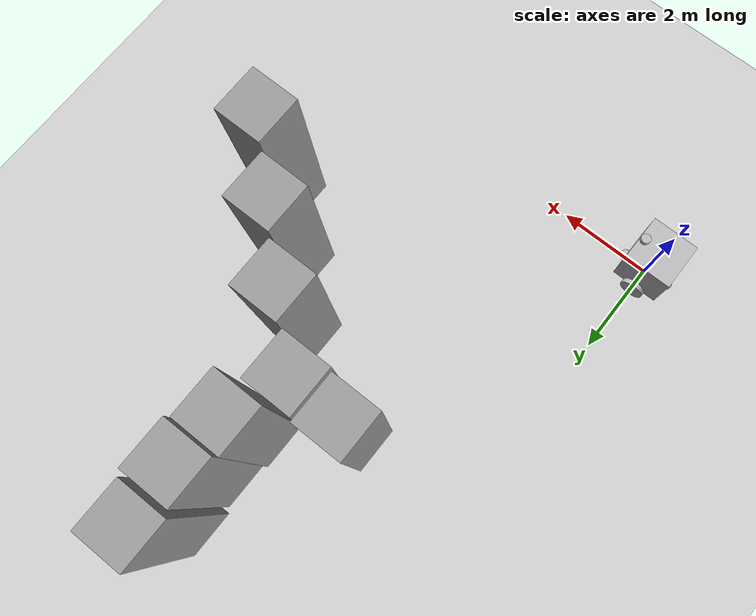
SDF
<sdf version="1.6">
 <world name="default">
  <model name="ground_plane">
   <static>1</static>
   <link name="link">
    <collision name="collision">
     <geometry><plane><normal>0 0 1</normal><size>100 100</size></plane></geometry>
     <surface><friction><ode><mu>100</mu><mu2>50</mu2></ode></friction></surface>
    </collision>
    <visual name="visual">
     <cast_shadows>0</cast_shadows>
     <geometry><plane><normal>0 0 1</normal><size>100 100</size></plane></geometry>
     <material>
      <script><uri>file://media/materials/scripts/gazebo.material</uri><name>Gazebo/Grey</name></script>
     </material>
    </visual>
   </link>
  </model>
  <light name="sun" type="directional">
   <pose>0 0 10 0 -0 0</pose>
   <diffuse>0.8 0.8 0.8 1</diffuse>
   <specular>0.1 0.1 0.1 1</specular>
   <attenuation>
    <range>1000</range>
    <constant>0.9</constant>
    <linear>0.01</linear>
    <quadratic>0.001</quadratic>
   </attenuation>
   <direction>-0.5 0.5 -1</direction>
  </light>
  <model name="robot">
   <static>0</static>
   <pose>0.000142 -2e-06 0.500004 -1e-06 9e-06 -0.000112</pose>
   <link name="body">
    <pose>0 0 0.25 0 -0 0</pose>
    <collision name="collision"><geometry><box><size>1 1 1</size></box></geometry></collision>
    <visual name="visual"><geometry><box><size>1 1 1</size></box></geometry></visual>
    <collision name="caster_collision">
     <pose>-0.5 0 -0.625 0 -0 0</pose>
     <geometry><sphere><radius>0.125</radius></sphere></geometry>
     <surface><friction><ode><mu>0</mu><mu2>0</mu2><slip1>1</slip1><slip2>1</slip2></ode></friction></surface>
    </collision>
    <visual name="caster_visual">
     <pose>-0.5 0 -0.625 0 -0 0</pose>
     <geometry><sphere><radius>0.125</radius></sphere></geometry>
    </visual>
    <collision name="caster_collision_2">
     <pose>0.5 0 -0.625 0 -0 0</pose>
     <geometry><sphere><radius>0.125</radius></sphere></geometry>
     <surface><friction><ode><mu>0</mu><mu2>0</mu2><slip1>1</slip1><slip2>1</slip2></ode></friction></surface>
    </collision>
    <visual name="caster_visual_2">
     <pose>0.5 0 -0.625 0 -0 0</pose>
     <geometry><sphere><radius>0.125</radius></sphere></geometry>
    </visual>
    <inertial>
     <inertia><ixx>1</ixx><ixy>0</ixy><ixz>0</ixz><iyy>1</iyy><iyz>0</iyz><izz>1</izz></inertia>
     <mass>1</mass>
    </inertial>
   </link>
   <link name="laser_sensor">
    <pose>0.4 0 0.8 0 -0 0</pose>
    <collision name="collision">
     <geometry><cylinder><radius>0.1</radius><length>0.1</length></cylinder></geometry>
    </collision>
    <visual name="visual">
     <geometry><cylinder><radius>0.1</radius><length>0.1</length></cylinder></geometry>
    </visual>
    <sensor name="sensor" type="ray">
     <pose>0 0 0.05 0 -0 0</pose>
     <visualize>1</visualize>
     <update_rate>30</update_rate>
     <ray>
      <scan>
       <horizontal>
        <samples>32</samples>
        <resolution>1</resolution>
        <min_angle>0</min_angle>
        <max_angle>6.28</max_angle>
       </horizontal>
       <vertical><samples>1</samples><min_angle>0</min_angle><max_angle>0</max_angle></vertical>
      </scan>
      <range><min>0.05</min><max>70</max><resolution>0.02</resolution></range>
     </ray>
     <plugin name="robot_laser_plugin" filename="libgazebo_ros_laser.so">
      <topicName>/scan_raw</topicName>
      <frameName>laser_sensor</frameName>
     </plugin>
    </sensor>
    <inertial>
     <inertia><ixx>1</ixx><ixy>0</ixy><ixz>0</ixz><iyy>1</iyy><iyz>0</iyz><izz>1</izz></inertia>
     <mass>1</mass>
    </inertial>
   </link>
   <link name="left_front_wheel">
    <pose>0 0.55 -0.25 -0 1.5707 1.5707</pose>
    <collision name="collision">
     <geometry><cylinder><radius>0.25</radius><length>0.1</length></cylinder></geometry>
    </collision>
    <visual name="visual">
     <geometry><cylinder><radius>0.25</radius><length>0.1</length></cylinder></geometry>
    </visual>
    <inertial>
     <inertia><ixx>1</ixx><ixy>0</ixy><ixz>0</ixz><iyy>1</iyy><iyz>0</iyz><izz>1</izz></inertia>
     <mass>1</mass>
    </inertial>
   </link>
   <link name="right_front_wheel">
    <pose>0 -0.55 -0.25 -0 -1.5707 -1.5707</pose>
    <collision name="collision">
     <geometry><cylinder><radius>0.25</radius><length>0.1</length></cylinder></geometry>
    </collision>
    <visual name="visual">
     <geometry><cylinder><radius>0.25</radius><length>0.1</length></cylinder></geometry>
    </visual>
    <inertial>
     <inertia><ixx>1</ixx><ixy>0</ixy><ixz>0</ixz><iyy>1</iyy><iyz>0</iyz><izz>1</izz></inertia>
     <mass>1</mass>
    </inertial>
   </link>
   <joint name="sensor_hinge" type="revolute">
    <child>laser_sensor</child>
    <parent>body</parent>
    <axis>
     <xyz>0 0 1</xyz>
     <limit><lower>0</lower><upper>0</upper></limit>
     <use_parent_model_frame>1</use_parent_model_frame>
     <dynamics><spring_reference>0</spring_reference><spring_stiffness>0</spring_stiffness></dynamics>
    </axis>
   </joint>
   <joint name="left_front_wheel_hinge" type="revolute">
    <child>left_front_wheel</child>
    <parent>body</parent>
    <axis>
     <xyz>0 1 0</xyz>
     <use_parent_model_frame>1</use_parent_model_frame>
     <limit><lower>-1e+16</lower><upper>1e+16</upper></limit>
     <dynamics><spring_reference>0</spring_reference><spring_stiffness>0</spring_stiffness></dynamics>
    </axis>
   </joint>
   <joint name="right_front_wheel_hinge" type="revolute">
    <child>right_front_wheel</child>
    <parent>body</parent>
    <axis>
     <xyz>0 1 0</xyz>
     <use_parent_model_frame>1</use_parent_model_frame>
     <limit><lower>-1e+16</lower><upper>1e+16</upper></limit>
     <dynamics><spring_reference>0</spring_reference><spring_stiffness>0</spring_stiffness></dynamics>
    </axis>
   </joint>
  </model>
  <gravity>0 0 -9.8</gravity>
  <magnetic_field>6e-06 2.3e-05 -4.2e-05</magnetic_field>
  <atmosphere type="adiabatic"/>
  <physics name="default_physics" default="0" type="ode">
   <max_step_size>0.001</max_step_size>
   <real_time_factor>1</real_time_factor>
   <real_time_update_rate>1000</real_time_update_rate>
  </physics>
  <scene><ambient>0.4 0.4 0.4 1</ambient><background>0.7 0.7 0.7 1</background><shadows>1</shadows></scene>
  <spherical_coordinates>
   <surface_model>EARTH_WGS84</surface_model>
   <latitude_deg>0</latitude_deg>
   <longitude_deg>0</longitude_deg>
   <elevation>0</elevation>
   <heading_deg>0</heading_deg>
  </spherical_coordinates>
  <model name="testbox">
   <link name="link">
    <inertial>
     <mass>3.63727</mass>
     <inertia><ixx>4.31314</ixx><ixy>0</ixy><ixz>0</ixz><iyy>4.31314</iyy><iyz>0</iyz><izz>0.606213</izz></inertia>
    </inertial>
    <visual name="visual">
     <geometry><box><size>1 1 3.63728</size></box></geometry>
     <material>
      <script><name>Gazebo/Grey</name><uri>file://media/materials/scripts/gazebo.material</uri></script>
      <ambient>0.3 0.3 0.3 1</ambient>
      <diffuse>0.7 0.7 0.7 1</diffuse>
      <specular>0.01 0.01 0.01 1</specular>
      <emissive>0 0 0 1</emissive>
     </material>
    </visual>
    <collision name="collision">
     <geometry><box><size>1 1 3.63728</size></box></geometry>
     <surface>
      <friction>
       <ode><mu>1</mu><mu2>1</mu2><fdir1>0 0 0</fdir1><slip1>0</slip1><slip2>0</slip2></ode>
       <torsional>
        <coefficient>1</coefficient>
        <patch_radius>0</patch_radius>
        <surface_radius>0</surface_radius>
        <use_patch_radius>1</use_patch_radius>
        <ode><slip>0</slip></ode>
       </torsional>
      </friction>
      <bounce><restitution_coefficient>0</restitution_coefficient><threshold>1e+06</threshold></bounce>
      <contact>
       <collide_without_contact>0</collide_without_contact>
       <collide_without_contact_bitmask>1</collide_without_contact_bitmask>
       <collide_bitmask>1</collide_bitmask>
       <ode>
        <soft_cfm>0</soft_cfm>
        <soft_erp>0.2</soft_erp>
        <kp>1e+13</kp>
        <kd>1</kd>
        <max_vel>0.01</max_vel>
        <min_depth>0</min_depth>
       </ode>
       <bullet>
        <split_impulse>1</split_impulse>
        <split_impulse_penetration_threshold>-0.01</split_impulse_penetration_threshold>
        <soft_cfm>0</soft_cfm>
        <soft_erp>0.2</soft_erp>
        <kp>1e+13</kp>
        <kd>1</kd>
       </bullet>
      </contact>
     </surface>
    </collision>
   </link>
   <static>0</static>
   <pose>2.5656 6.35117 1.81864 1e-06 -0 4e-06</pose>
  </model>
  <model name="testbox_0">
   <link name="link">
    <inertial>
     <mass>3.63727</mass>
     <inertia><ixx>4.31314</ixx><ixy>0</ixy><ixz>0</ixz><iyy>4.31314</iyy><iyz>0</iyz><izz>0.606213</izz></inertia>
    </inertial>
    <visual name="visual">
     <geometry><box><size>1 1 3.63728</size></box></geometry>
     <material>
      <script><name>Gazebo/Grey</name><uri>file://media/materials/scripts/gazebo.material</uri></script>
      <ambient>0.3 0.3 0.3 1</ambient>
      <diffuse>0.7 0.7 0.7 1</diffuse>
      <specular>0.01 0.01 0.01 1</specular>
      <emissive>0 0 0 1</emissive>
     </material>
    </visual>
    <collision name="collision">
     <geometry><box><size>1 1 3.63728</size></box></geometry>
     <surface>
      <friction>
       <ode><mu>1</mu><mu2>1</mu2><fdir1>0 0 0</fdir1><slip1>0</slip1><slip2>0</slip2></ode>
       <torsional>
        <coefficient>1</coefficient>
        <patch_radius>0</patch_radius>
        <surface_radius>0</surface_radius>
        <use_patch_radius>1</use_patch_radius>
        <ode><slip>0</slip></ode>
       </torsional>
      </friction>
      <bounce><restitution_coefficient>0</restitution_coefficient><threshold>1e+06</threshold></bounce>
      <contact>
       <collide_without_contact>0</collide_without_contact>
       <collide_without_contact_bitmask>1</collide_without_contact_bitmask>
       <collide_bitmask>1</collide_bitmask>
       <ode>
        <soft_cfm>0</soft_cfm>
        <soft_erp>0.2</soft_erp>
        <kp>1e+13</kp>
        <kd>1</kd>
        <max_vel>0.01</max_vel>
        <min_depth>0</min_depth>
       </ode>
       <bullet>
        <split_impulse>1</split_impulse>
        <split_impulse_penetration_threshold>-0.01</split_impulse_penetration_threshold>
        <soft_cfm>0</soft_cfm>
        <soft_erp>0.2</soft_erp>
        <kp>1e+13</kp>
        <kd>1</kd>
       </bullet>
      </contact>
     </surface>
    </collision>
   </link>
   <static>0</static>
   <pose>3.61071 6.30295 1.81864 -1e-06 1e-06 1e-06</pose>
  </model>
  <model name="testbox_1">
   <link name="link">
    <inertial>
     <mass>3.63727</mass>
     <inertia><ixx>4.31314</ixx><ixy>0</ixy><ixz>0</ixz><iyy>4.31314</iyy><iyz>0</iyz><izz>0.606213</izz></inertia>
    </inertial>
    <visual name="visual">
     <geometry><box><size>1 1 3.63728</size></box></geometry>
     <material>
      <script><name>Gazebo/Grey</name><uri>file://media/materials/scripts/gazebo.material</uri></script>
      <ambient>0.3 0.3 0.3 1</ambient>
      <diffuse>0.7 0.7 0.7 1</diffuse>
      <specular>0.01 0.01 0.01 1</specular>
      <emissive>0 0 0 1</emissive>
     </material>
    </visual>
    <collision name="collision">
     <geometry><box><size>1 1 3.63728</size></box></geometry>
     <surface>
      <friction>
       <ode><mu>1</mu><mu2>1</mu2><fdir1>0 0 0</fdir1><slip1>0</slip1><slip2>0</slip2></ode>
       <torsional>
        <coefficient>1</coefficient>
        <patch_radius>0</patch_radius>
        <surface_radius>0</surface_radius>
        <use_patch_radius>1</use_patch_radius>
        <ode><slip>0</slip></ode>
       </torsional>
      </friction>
      <bounce><restitution_coefficient>0</restitution_coefficient><threshold>1e+06</threshold></bounce>
      <contact>
       <collide_without_contact>0</collide_without_contact>
       <collide_without_contact_bitmask>1</collide_without_contact_bitmask>
       <collide_bitmask>1</collide_bitmask>
       <ode>
        <soft_cfm>0</soft_cfm>
        <soft_erp>0.2</soft_erp>
        <kp>1e+13</kp>
        <kd>1</kd>
        <max_vel>0.01</max_vel>
        <min_depth>0</min_depth>
       </ode>
       <bullet>
        <split_impulse>1</split_impulse>
        <split_impulse_penetration_threshold>-0.01</split_impulse_penetration_threshold>
        <soft_cfm>0</soft_cfm>
        <soft_erp>0.2</soft_erp>
        <kp>1e+13</kp>
        <kd>1</kd>
       </bullet>
      </contact>
     </surface>
    </collision>
   </link>
   <static>0</static>
   <pose>4.74669 5.29777 1.81864 0 -0 2e-06</pose>
  </model>
  <model name="testbox_2">
   <link name="link">
    <inertial>
     <mass>3.63727</mass>
     <inertia><ixx>4.31314</ixx><ixy>0</ixy><ixz>0</ixz><iyy>4.31314</iyy><iyz>0</iyz><izz>0.606213</izz></inertia>
    </inertial>
    <visual name="visual">
     <geometry><box><size>1 1 3.63728</size></box></geometry>
     <material>
      <script><name>Gazebo/Grey</name><uri>file://media/materials/scripts/gazebo.material</uri></script>
      <ambient>0.3 0.3 0.3 1</ambient>
      <diffuse>0.7 0.7 0.7 1</diffuse>
      <specular>0.01 0.01 0.01 1</specular>
      <emissive>0 0 0 1</emissive>
     </material>
    </visual>
    <collision name="collision">
     <geometry><box><size>1 1 3.63728</size></box></geometry>
     <surface>
      <friction>
       <ode><mu>1</mu><mu2>1</mu2><fdir1>0 0 0</fdir1><slip1>0</slip1><slip2>0</slip2></ode>
       <torsional>
        <coefficient>1</coefficient>
        <patch_radius>0</patch_radius>
        <surface_radius>0</surface_radius>
        <use_patch_radius>1</use_patch_radius>
        <ode><slip>0</slip></ode>
       </torsional>
      </friction>
      <bounce><restitution_coefficient>0</restitution_coefficient><threshold>1e+06</threshold></bounce>
      <contact>
       <collide_without_contact>0</collide_without_contact>
       <collide_without_contact_bitmask>1</collide_without_contact_bitmask>
       <collide_bitmask>1</collide_bitmask>
       <ode>
        <soft_cfm>0</soft_cfm>
        <soft_erp>0.2</soft_erp>
        <kp>1e+13</kp>
        <kd>1</kd>
        <max_vel>0.01</max_vel>
        <min_depth>0</min_depth>
       </ode>
       <bullet>
        <split_impulse>1</split_impulse>
        <split_impulse_penetration_threshold>-0.01</split_impulse_penetration_threshold>
        <soft_cfm>0</soft_cfm>
        <soft_erp>0.2</soft_erp>
        <kp>1e+13</kp>
        <kd>1</kd>
       </bullet>
      </contact>
     </surface>
    </collision>
   </link>
   <static>0</static>
   <pose>5.82655 4.23009 1.81864 -1e-06 -0 3e-06</pose>
  </model>
  <model name="testbox_3">
   <link name="link">
    <inertial>
     <mass>3.63727</mass>
     <inertia><ixx>4.31314</ixx><ixy>0</ixy><ixz>0</ixz><iyy>4.31314</iyy><iyz>0</iyz><izz>0.606213</izz></inertia>
    </inertial>
    <visual name="visual">
     <geometry><box><size>1 1 3.63728</size></box></geometry>
     <material>
      <script><name>Gazebo/Grey</name><uri>file://media/materials/scripts/gazebo.material</uri></script>
      <ambient>0.3 0.3 0.3 1</ambient>
      <diffuse>0.7 0.7 0.7 1</diffuse>
      <specular>0.01 0.01 0.01 1</specular>
      <emissive>0 0 0 1</emissive>
     </material>
    </visual>
    <collision name="collision">
     <geometry><box><size>1 1 3.63728</size></box></geometry>
     <surface>
      <friction>
       <ode><mu>1</mu><mu2>1</mu2><fdir1>0 0 0</fdir1><slip1>0</slip1><slip2>0</slip2></ode>
       <torsional>
        <coefficient>1</coefficient>
        <patch_radius>0</patch_radius>
        <surface_radius>0</surface_radius>
        <use_patch_radius>1</use_patch_radius>
        <ode><slip>0</slip></ode>
       </torsional>
      </friction>
      <bounce><restitution_coefficient>0</restitution_coefficient><threshold>1e+06</threshold></bounce>
      <contact>
       <collide_without_contact>0</collide_without_contact>
       <collide_without_contact_bitmask>1</collide_without_contact_bitmask>
       <collide_bitmask>1</collide_bitmask>
       <ode>
        <soft_cfm>0</soft_cfm>
        <soft_erp>0.2</soft_erp>
        <kp>1e+13</kp>
        <kd>1</kd>
        <max_vel>0.01</max_vel>
        <min_depth>0</min_depth>
       </ode>
       <bullet>
        <split_impulse>1</split_impulse>
        <split_impulse_penetration_threshold>-0.01</split_impulse_penetration_threshold>
        <soft_cfm>0</soft_cfm>
        <soft_erp>0.2</soft_erp>
        <kp>1e+13</kp>
        <kd>1</kd>
       </bullet>
      </contact>
     </surface>
    </collision>
   </link>
   <static>0</static>
   <pose>6.96415 3.14341 1.81864 -1e-06 0 2e-06</pose>
  </model>
  <model name="testbox_4">
   <link name="link">
    <inertial>
     <mass>3.63727</mass>
     <inertia><ixx>4.31314</ixx><ixy>0</ixy><ixz>0</ixz><iyy>4.31314</iyy><iyz>0</iyz><izz>0.606213</izz></inertia>
    </inertial>
    <visual name="visual">
     <geometry><box><size>1 1 3.63728</size></box></geometry>
     <material>
      <script><name>Gazebo/Grey</name><uri>file://media/materials/scripts/gazebo.material</uri></script>
      <ambient>0.3 0.3 0.3 1</ambient>
      <diffuse>0.7 0.7 0.7 1</diffuse>
      <specular>0.01 0.01 0.01 1</specular>
      <emissive>0 0 0 1</emissive>
     </material>
    </visual>
    <collision name="collision">
     <geometry><box><size>1 1 3.63728</size></box></geometry>
     <surface>
      <friction>
       <ode><mu>1</mu><mu2>1</mu2><fdir1>0 0 0</fdir1><slip1>0</slip1><slip2>0</slip2></ode>
       <torsional>
        <coefficient>1</coefficient>
        <patch_radius>0</patch_radius>
        <surface_radius>0</surface_radius>
        <use_patch_radius>1</use_patch_radius>
        <ode><slip>0</slip></ode>
       </torsional>
      </friction>
      <bounce><restitution_coefficient>0</restitution_coefficient><threshold>1e+06</threshold></bounce>
      <contact>
       <collide_without_contact>0</collide_without_contact>
       <collide_without_contact_bitmask>1</collide_without_contact_bitmask>
       <collide_bitmask>1</collide_bitmask>
       <ode>
        <soft_cfm>0</soft_cfm>
        <soft_erp>0.2</soft_erp>
        <kp>1e+13</kp>
        <kd>1</kd>
        <max_vel>0.01</max_vel>
        <min_depth>0</min_depth>
       </ode>
       <bullet>
        <split_impulse>1</split_impulse>
        <split_impulse_penetration_threshold>-0.01</split_impulse_penetration_threshold>
        <soft_cfm>0</soft_cfm>
        <soft_erp>0.2</soft_erp>
        <kp>1e+13</kp>
        <kd>1</kd>
       </bullet>
      </contact>
     </surface>
    </collision>
   </link>
   <static>0</static>
   <pose>4.06384 7.41882 1.81864 -1e-06 -0 5e-06</pose>
  </model>
  <model name="testbox_5">
   <link name="link">
    <inertial>
     <mass>3.63727</mass>
     <inertia><ixx>4.31314</ixx><ixy>0</ixy><ixz>0</ixz><iyy>4.31314</iyy><iyz>0</iyz><izz>0.606213</izz></inertia>
    </inertial>
    <visual name="visual">
     <geometry><box><size>1 1 3.63728</size></box></geometry>
     <material>
      <script><name>Gazebo/Grey</name><uri>file://media/materials/scripts/gazebo.material</uri></script>
      <ambient>0.3 0.3 0.3 1</ambient>
      <diffuse>0.7 0.7 0.7 1</diffuse>
      <specular>0.01 0.01 0.01 1</specular>
      <emissive>0 0 0 1</emissive>
     </material>
    </visual>
    <collision name="collision">
     <geometry><box><size>1 1 3.63728</size></box></geometry>
     <surface>
      <friction>
       <ode><mu>1</mu><mu2>1</mu2><fdir1>0 0 0</fdir1><slip1>0</slip1><slip2>0</slip2></ode>
       <torsional>
        <coefficient>1</coefficient>
        <patch_radius>0</patch_radius>
        <surface_radius>0</surface_radius>
        <use_patch_radius>1</use_patch_radius>
        <ode><slip>0</slip></ode>
       </torsional>
      </friction>
      <bounce><restitution_coefficient>0</restitution_coefficient><threshold>1e+06</threshold></bounce>
      <contact>
       <collide_without_contact>0</collide_without_contact>
       <collide_without_contact_bitmask>1</collide_without_contact_bitmask>
       <collide_bitmask>1</collide_bitmask>
       <ode>
        <soft_cfm>0</soft_cfm>
        <soft_erp>0.2</soft_erp>
        <kp>1e+13</kp>
        <kd>1</kd>
        <max_vel>0.01</max_vel>
        <min_depth>0</min_depth>
       </ode>
       <bullet>
        <split_impulse>1</split_impulse>
        <split_impulse_penetration_threshold>-0.01</split_impulse_penetration_threshold>
        <soft_cfm>0</soft_cfm>
        <soft_erp>0.2</soft_erp>
        <kp>1e+13</kp>
        <kd>1</kd>
       </bullet>
      </contact>
     </surface>
    </collision>
   </link>
   <static>0</static>
   <pose>4.15519 8.46783 1.81864 -1e-06 -0 4e-06</pose>
  </model>
  <model name="testbox_6">
   <link name="link">
    <inertial>
     <mass>3.63727</mass>
     <inertia><ixx>4.31314</ixx><ixy>0</ixy><ixz>0</ixz><iyy>4.31314</iyy><iyz>0</iyz><izz>0.606213</izz></inertia>
    </inertial>
    <visual name="visual">
     <geometry><box><size>1 1 3.63728</size></box></geometry>
     <material>
      <script><name>Gazebo/Grey</name><uri>file://media/materials/scripts/gazebo.material</uri></script>
      <ambient>0.3 0.3 0.3 1</ambient>
      <diffuse>0.7 0.7 0.7 1</diffuse>
      <specular>0.01 0.01 0.01 1</specular>
      <emissive>0 0 0 1</emissive>
     </material>
    </visual>
    <collision name="collision">
     <geometry><box><size>1 1 3.63728</size></box></geometry>
     <surface>
      <friction>
       <ode><mu>1</mu><mu2>1</mu2><fdir1>0 0 0</fdir1><slip1>0</slip1><slip2>0</slip2></ode>
       <torsional>
        <coefficient>1</coefficient>
        <patch_radius>0</patch_radius>
        <surface_radius>0</surface_radius>
        <use_patch_radius>1</use_patch_radius>
        <ode><slip>0</slip></ode>
       </torsional>
      </friction>
      <bounce><restitution_coefficient>0</restitution_coefficient><threshold>1e+06</threshold></bounce>
      <contact>
       <collide_without_contact>0</collide_without_contact>
       <collide_without_contact_bitmask>1</collide_without_contact_bitmask>
       <collide_bitmask>1</collide_bitmask>
       <ode>
        <soft_cfm>0</soft_cfm>
        <soft_erp>0.2</soft_erp>
        <kp>1e+13</kp>
        <kd>1</kd>
        <max_vel>0.01</max_vel>
        <min_depth>0</min_depth>
       </ode>
       <bullet>
        <split_impulse>1</split_impulse>
        <split_impulse_penetration_threshold>-0.01</split_impulse_penetration_threshold>
        <soft_cfm>0</soft_cfm>
        <soft_erp>0.2</soft_erp>
        <kp>1e+13</kp>
        <kd>1</kd>
       </bullet>
      </contact>
     </surface>
    </collision>
   </link>
   <static>0</static>
   <pose>4.07641 9.56793 1.81864 0 -1e-06 1e-06</pose>
  </model>
 </world>
</sdf>
